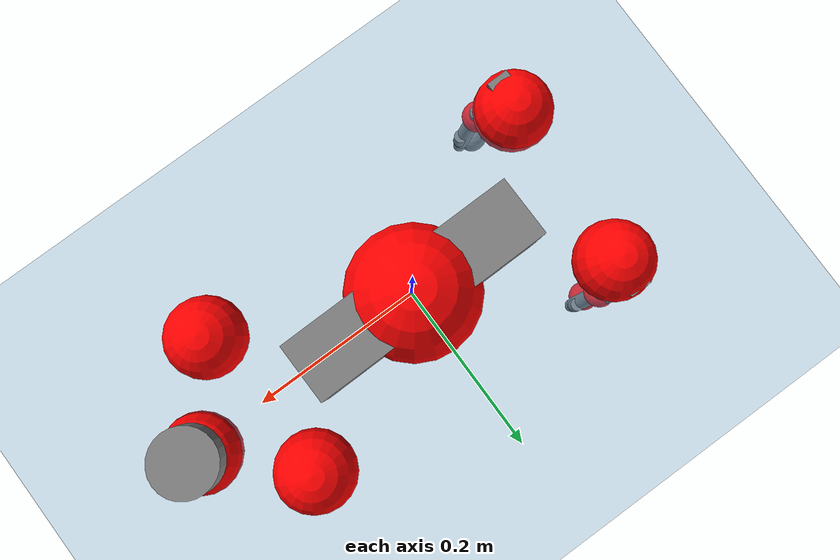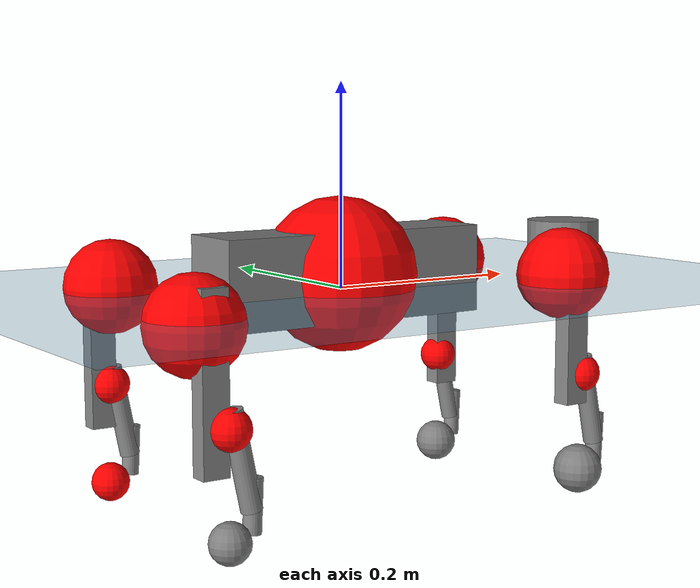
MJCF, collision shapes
<mujoco model="go2">
  <compiler angle="radian" assetdir="assets" balanceinertia="true" inertiafromgeom="false"/>

  <option timestep="0.005" density="1.2" viscosity="2e-05"/>

  <size nkey="1"/>

  <visual>
    <quality shadowsize="8192"/>
    <map shadowclip="0.5"/>
  </visual>

  <default>
    <default class="/">
      <geom contype="0" conaffinity="0" group="1" solref="-1000 -80"/>
      <site size="0.01 0.005 0.005" group="5"/>
      <general forcelimited="true" biastype="affine" gainprm="20" biasprm="0 -20 -0.5"/>
      <default class="go2">
        <joint armature="0.01" damping="0.01" frictionloss="0.2"/>
        <geom condim="1" margin="0.001"/>
        <default class="visual">
          <geom type="mesh" group="2"/>
        </default>
        <default class="collision">
          <geom group="3"/>
          <default class="foot">
            <geom size="0.022 0 0" condim="6" priority="1" friction="0.8 0.02 0.01" solimp="0.015 1 0.022"/>
          </default>
        </default>
        <default class="reward_collision_sphere">
          <geom group="5" rgba="1 0 0 1"/>
        </default>
      </default>
    </default>
  </default>

  <asset>
    <texture type="skybox" colorspace="auto" name="//unnamed_texture_0" builtin="gradient" rgb1="0.95 0.95 0.95" rgb2="0.95 0.95 0.95" width="100" height="600"/>
    <texture type="2d" colorspace="auto" name="texplane" builtin="checker" rgb1="0.345 0.575 0.748" rgb2="0.345 0.575 0.748" markrgb="1 1 1" width="512" height="512"/>
    <material name="MatPlane" class="/" texture="texplane" texuniform="true" texrepeat="2 2" specular="0.9"/>
    <material name="metal" class="/" rgba="0.9 0.95 0.95 1"/>
    <material name="black" class="/" rgba="0 0 0 1"/>
    <material name="white" class="/"/>
    <material name="gray" class="/" rgba="0.671705 0.692426 0.77427 1"/>
    <mesh name="base_0" class="/" file="base_0.obj"/>
    <mesh name="base_1" class="/" file="base_1.obj"/>
    <mesh name="base_2" class="/" file="base_2.obj"/>
    <mesh name="base_3" class="/" file="base_3.obj"/>
    <mesh name="base_4" class="/" file="base_4.obj"/>
    <mesh name="hip_0" class="/" file="hip_0.obj"/>
    <mesh name="hip_1" class="/" file="hip_1.obj"/>
    <mesh name="thigh_0" class="/" file="thigh_0.obj"/>
    <mesh name="thigh_1" class="/" file="thigh_1.obj"/>
    <mesh name="thigh_mirror_0" class="/" file="thigh_mirror_0.obj"/>
    <mesh name="thigh_mirror_1" class="/" file="thigh_mirror_1.obj"/>
    <mesh name="calf_0" class="/" file="calf_0.obj"/>
    <mesh name="calf_1" class="/" file="calf_1.obj"/>
    <mesh name="calf_mirror_0" class="/" file="calf_mirror_0.obj"/>
    <mesh name="calf_mirror_1" class="/" file="calf_mirror_1.obj"/>
    <mesh name="foot" class="/" file="foot.obj"/>
  </asset>

  <worldbody>
    <geom name="floor" class="/" size="100 100 0.125" type="plane" group="0" material="MatPlane"/>
    <light name="toplight_shadow" class="/" pos="0 0 5" dir="0.0990148 0.0990148 -0.990148" type="directional" ambient="0.04 0.04 0.04" diffuse="0.55 0.55 0.55" specular="0.12 0.12 0.12"/>
    <light name="toplight_fill" class="/" pos="0 0 5" dir="0.0990148 0.0990148 -0.990148" type="directional" castshadow="false" ambient="0.04 0.04 0.04" diffuse="0.3 0.3 0.3" specular="0.08 0.08 0.08"/>
    <body name="trunk" childclass="go2" pos="-0.00140821 0.00123206 0.0136749" quat="0.99998 0.00180161 -0.00111539 0.00596287">
      <inertial pos="0.0211217 -0.0107997 -0.00131064" quat="0.0379813 0.679308 -0.0112106 0.732784" mass="2.82716" diaginertia="0.100164 0.0279958 0.000422899"/>
      <joint name="//unnamed_joint_0" type="free" armature="0" damping="0" frictionloss="0"/>
      <geom name="//unnamed_geom_1" class="visual" material="black" mesh="base_0"/>
      <geom name="//unnamed_geom_2" class="visual" material="black" mesh="base_1"/>
      <geom name="//unnamed_geom_3" class="visual" material="black" mesh="base_2"/>
      <geom name="//unnamed_geom_4" class="visual" material="white" mesh="base_3"/>
      <geom name="//unnamed_geom_5" class="visual" material="gray" mesh="base_4"/>
      <geom name="trunk_1" class="collision" size="0.143578 0.0356845 0.0435084" type="box"/>
      <geom name="trunk_2" class="collision" size="0.0381653 0.0343487" pos="0.291734 0 0.00461914" type="cylinder"/>
      <geom name="trunk_3" class="collision" size="0.0358754" pos="0.299924 0 -0.0277149"/>
      <geom name="//unnamed_geom_9" class="reward_collision_sphere" size="0.0763305"/>
      <geom name="//unnamed_geom_10" class="reward_collision_sphere" size="0.0457983" pos="0.286616 0 -0.0207861"/>
      <site name="imu" pos="-0.0386505 -0.0387346 0.0707819" size="0.00763305"/>
      <camera name="track" pos="0 -1.60874 0" quat="0.707107 0.707107 0 0" mode="trackcom"/>
      <camera name="ego_camera" pos="0.319372 0 0.0207861" quat="-0.5 -0.5 0.5 0.5"/>
      <body name="FL_hip" pos="0.196721 0.0326844 -0.00556373" quat="1 -5.00814e-05 -0.000258436 0.000211076">
        <inertial pos="0.00661834 0.00333574 0.0131938" quat="0.539066 0.519075 0.463255 0.474725" mass="0.326242" diaginertia="0.000956664 0.000230595 1.10322e-05"/>
        <joint name="FL_hip_joint" pos="0 0 0" axis="0.998362 0.0140991 -0.055452" stiffness="0.0483367" range="-1.06203 0.903793" armature="0.00760195" damping="0.0561165" frictionloss="0.0985601"/>
        <geom name="//unnamed_geom_11" class="visual" material="metal" mesh="hip_0"/>
        <geom name="//unnamed_geom_12" class="visual" material="gray" mesh="hip_1"/>
        <geom name="//unnamed_geom_13" class="collision" size="0.0351121 0.0152661" pos="0 0.0643498 0" quat="0.707107 0.707107 0 0" type="cylinder"/>
        <geom name="//unnamed_geom_14" class="reward_collision_sphere" size="0.0457983" pos="0 0.0563061 0"/>
        <body name="FL_thigh" pos="0.0105658 0.0708391 -0.0103535" quat="1 -0.000209073 0.000414992 0.000674647">
          <inertial pos="-0.00312998 -0.0170568 -0.0148776" quat="0.820891 0.0731489 -0.0284673 0.565665" mass="0.56337" diaginertia="0.00739215 0.00223989 2.39546e-05"/>
          <joint name="FL_thigh_joint" pos="0 0 0" axis="0.00371505 0.99996 0.0081965" stiffness="0.0053115" range="-1.42298 3.53932" armature="0.0107891" damping="0" frictionloss="0.154964"/>
          <geom name="//unnamed_geom_15" class="visual" material="metal" mesh="thigh_0"/>
          <geom name="//unnamed_geom_16" class="visual" material="gray" mesh="thigh_1"/>
          <geom name="//unnamed_geom_17" class="collision" size="0.081292 0.00935049 0.0129762" pos="0 0 -0.0491939" quat="0.707107 0 0.707107 0" type="box"/>
          <body name="FL_calf" pos="-0.0046208 0.000601297 -0.0991182" quat="1 -0.000215914 -0.000281822 0.000442156">
            <inertial pos="0.0212768 0.0124959 -0.0649048" quat="0.710765 0.00143565 -0.00492001 0.703411" mass="0.10837" diaginertia="0.00192581 0.000485154 1.09576e-06"/>
            <joint name="FL_calf_joint" pos="0 0 0" axis="-0.00193704 0.999721 0.0235202" stiffness="0.0198473" range="-2.43131 -0.992558" armature="0.00946394" damping="0.0226594" frictionloss="0.0452507"/>
            <geom name="//unnamed_geom_18" class="visual" material="gray" mesh="calf_0"/>
            <geom name="//unnamed_geom_19" class="visual" material="black" mesh="calf_1"/>
            <geom name="FL_calf0" class="collision" size="0.00915967 0.0457983" pos="0.00818904 0 -0.0277149" quat="0.994493 0 -0.104807 0" type="cylinder"/>
            <geom name="//unnamed_geom_21" class="collision" size="0.00839636 0.0248074" pos="0.0204726 0 -0.0683633" quat="0.999688 0 0.0249974 0" type="cylinder"/>
            <geom name="//unnamed_geom_22" class="visual" pos="0 0 -0.0983877" quat="1 0 0 0" material="black" mesh="foot"/>
            <geom name="FL_foot" class="foot" size="0.0215681" pos="-0.00204726 0 -0.0983877"/>
            <geom name="//unnamed_geom_24" class="reward_collision_sphere" size="0.0190826"/>
            <geom name="//unnamed_geom_25" class="reward_collision_sphere" size="0.0190826" pos="-0.00204726 0 -0.0983877"/>
            <site name="FL_foot" class="foot" pos="-0.00204726 0 -0.0983877" size="0.00763305"/>
          </body>
        </body>
      </body>
      <body name="FR_hip" pos="0.20549 -0.0391741 -0.00408836" quat="0.999975 -0.00130114 -6.06558e-06 0.00692482">
        <inertial pos="-7.62744e-05 -0.00346473 0.00334083" quat="0.473841 0.487503 0.558057 0.475803" mass="0.262441" diaginertia="0.00101693 0.000209504 1.04124e-05"/>
        <joint name="FR_hip_joint" pos="0 0 0" axis="0.999342 -0.0323917 -0.0163264" stiffness="0.054976" range="-0.776003 1.18901" armature="0.00647926" damping="0.0496296" frictionloss="0.0876598"/>
        <geom name="//unnamed_geom_26" class="visual" pos="0 2.98335e-09 1.27962e-07" quat="4.63268e-05 1 0 0" material="metal" mesh="hip_0"/>
        <geom name="//unnamed_geom_27" class="visual" pos="0 4.83637e-09 -3.16499e-07" quat="4.63268e-05 1 0 0" material="gray" mesh="hip_1"/>
        <geom name="//unnamed_geom_28" class="collision" size="0.0351121 0.0152661" pos="0 -0.0643498 0" quat="0.707107 0.707107 0 0" type="cylinder"/>
        <geom name="//unnamed_geom_29" class="reward_collision_sphere" size="0.0457983" pos="0 -0.0563061 0"/>
        <body name="FR_thigh" pos="0.00111243 -0.0688745 0.000102287" quat="0.999995 0.00180441 -0.000141021 0.00244599">
          <inertial pos="0.00289717 0.0191297 -0.0106881" quat="0.537701 -0.0288859 0.0906569 0.83775" mass="0.442117" diaginertia="0.00662537 0.00220053 1.68796e-05"/>
          <joint name="FR_thigh_joint" pos="0 0 0" axis="-0.0007576 -0.999999 0.00117896" range="-3.51085 1.72246" armature="0.0102381" damping="0.0766244" frictionloss="0.231894"/>
          <geom name="//unnamed_geom_30" class="visual" material="metal" mesh="thigh_mirror_0"/>
          <geom name="//unnamed_geom_31" class="visual" material="gray" mesh="thigh_mirror_1"/>
          <geom name="//unnamed_geom_32" class="collision" size="0.081292 0.00935049 0.0129762" pos="0 0 -0.0491939" quat="0.707107 0 0.707107 0" type="box"/>
          <body name="FR_calf" pos="0.0135098 -0.000291738 -0.101221" quat="0.999999 -0.000844116 -0.000186067 0.0010975">
            <inertial pos="0.0100817 0.0128174 -0.0757594" quat="0.736425 0.0189916 0.0487749 0.674492" mass="0.12709" diaginertia="0.00194023 0.000486334 1.42607e-06"/>
            <joint name="FR_calf_joint" pos="0 0 0" axis="-0.0150424 -0.999868 0.00607546" stiffness="0.0151904" range="0.829258 2.75232" armature="0.0077083" damping="0.0509762" frictionloss="0.203293"/>
            <geom name="//unnamed_geom_33" class="visual" material="gray" mesh="calf_mirror_0"/>
            <geom name="//unnamed_geom_34" class="visual" material="black" mesh="calf_mirror_1"/>
            <geom name="FR_calf0" class="collision" size="0.00992297 0.0457983" pos="0.0102363 0 -0.0277149" quat="0.995004 0 -0.0998334 0" type="cylinder"/>
            <geom name="//unnamed_geom_36" class="collision" size="0.00839636 0.0248074" pos="0.0204726 0 -0.0683633" quat="0.999688 0 0.0249974 0" type="cylinder"/>
            <geom name="//unnamed_geom_37" class="visual" pos="0 0 -0.0983877" quat="1 0 0 0" material="black" mesh="foot"/>
            <geom name="FR_foot" class="foot" size="0.0245085" pos="-0.00204726 0 -0.0983877"/>
            <geom name="//unnamed_geom_39" class="reward_collision_sphere" size="0.0190826"/>
            <geom name="//unnamed_geom_40" class="reward_collision_sphere" size="0.0190826" pos="-0.00204726 0 -0.0983877"/>
            <site name="FR_foot" class="foot" pos="-0.00204726 0 -0.0983877" size="0.00763305"/>
          </body>
        </body>
      </body>
      <body name="RL_hip" pos="-0.195825 0.0463318 -0.00945953" quat="0.999998 0.00136767 -0.0016211 -0.000379764">
        <inertial pos="0.00980668 0.0136864 0.0136916" quat="0.510492 0.49347 0.478019 0.517091" mass="0.335006" diaginertia="0.00117817 0.000204862 1.24602e-05"/>
        <joint name="RL_hip_joint" pos="0 0 0" axis="-0.998354 0.0562113 -0.0113572" range="-0.815526 0.798692" armature="0.0032753" damping="0.00490885" frictionloss="0.142878"/>
        <geom name="//unnamed_geom_41" class="visual" pos="-4.89343e-09 0 -9.59226e-07" quat="4.63268e-05 0 1 0" material="metal" mesh="hip_0"/>
        <geom name="//unnamed_geom_42" class="visual" pos="-7.93284e-09 0 -8.50697e-07" quat="4.63268e-05 0 1 0" material="gray" mesh="hip_1"/>
        <geom name="//unnamed_geom_43" class="collision" size="0.0351121 0.0152661" pos="0 0.0643498 0" quat="0.707107 0.707107 0 0" type="cylinder"/>
        <geom name="//unnamed_geom_44" class="reward_collision_sphere" size="0.0457983" pos="0 0.0563061 0"/>
        <body name="RL_thigh" pos="0.00115382 0.0882217 -0.0134855" quat="0.999989 -0.000820373 -0.00101122 -0.00460551">
          <inertial pos="-0.0182611 -0.00835381 -0.000819225" quat="0.830445 0.0851165 -0.0209746 0.55016" mass="0.416478" diaginertia="0.0045766 0.00156577 1.33349e-05"/>
          <joint name="RL_thigh_joint" pos="0 0 0" axis="0.0643527 0.997399 0.0324698" range="-0.354685 4.53437" armature="0.00706599" damping="0.0776812" frictionloss="0.10559"/>
          <geom name="//unnamed_geom_45" class="visual" material="metal" mesh="thigh_0"/>
          <geom name="//unnamed_geom_46" class="visual" material="gray" mesh="thigh_1"/>
          <geom name="//unnamed_geom_47" class="collision" size="0.081292 0.00935049 0.0129762" pos="0 0 -0.0491939" quat="0.707107 0 0.707107 0" type="box"/>
          <body name="RL_calf" pos="0.00822658 -0.00624492 -0.0875909" quat="0.999987 -0.00273931 0.00435485 -9.38091e-05">
            <inertial pos="0.0197634 -0.00958255 -0.0514016" quat="0.735864 0.0110849 0.0426253 0.675696" mass="0.119908" diaginertia="0.00189745 0.000597953 1.15676e-06"/>
            <joint name="RL_calf_joint" pos="0 0 0" axis="-0.0012648 0.999966 -0.00814021" stiffness="0.0114563" range="-2.76642 -0.541985" armature="0.00319826" damping="0.0733057" frictionloss="0.143904"/>
            <geom name="//unnamed_geom_48" class="visual" material="gray" mesh="calf_0"/>
            <geom name="//unnamed_geom_49" class="visual" material="black" mesh="calf_1"/>
            <geom name="RL_calf0" class="collision" size="0.00992297 0.0457983" pos="0.0102363 0 -0.0277149" quat="0.995004 0 -0.0998334 0" type="cylinder"/>
            <geom name="//unnamed_geom_51" class="collision" size="0.00839636 0.0248074" pos="0.0204726 0 -0.0683633" quat="0.999688 0 0.0249974 0" type="cylinder"/>
            <geom name="//unnamed_geom_52" class="visual" pos="0 0 -0.0983877" quat="1 0 0 0" material="black" mesh="foot"/>
            <geom name="RL_foot" class="foot" size="0.0135727" pos="-0.00204726 0 -0.0983877"/>
            <geom name="//unnamed_geom_54" class="reward_collision_sphere" size="0.0190826"/>
            <geom name="//unnamed_geom_55" class="reward_collision_sphere" size="0.0190826" pos="-0.00204726 0 -0.0983877"/>
            <site name="RL_foot" class="foot" pos="-0.00204726 0 -0.0983877" size="0.00763305"/>
          </body>
        </body>
      </body>
      <body name="RR_hip" pos="-0.212645 -0.0403472 -0.0197329" quat="0.999999 -0.000643029 0.000598598 0.000987779">
        <inertial pos="0.0161864 0.00639332 -0.00236271" quat="0.54104 0.459736 0.475652 0.519301" mass="0.296538" diaginertia="0.000690183 0.000167784 7.62143e-06"/>
        <joint name="RR_hip_joint" pos="0 0 0" axis="-0.997268 0.0619065 0.0402952" range="-0.920766 1.03647" armature="0.00755627" damping="0.0240757" frictionloss="0.0416353"/>
        <geom name="//unnamed_geom_56" class="visual" pos="4.88584e-09 2.98335e-09 -1.08719e-06" quat="2.14617e-09 4.63268e-05 4.63268e-05 -1" material="metal" mesh="hip_0"/>
        <geom name="//unnamed_geom_57" class="visual" pos="7.95161e-09 4.83637e-09 -5.34197e-07" quat="2.14617e-09 4.63268e-05 4.63268e-05 -1" material="gray" mesh="hip_1"/>
        <geom name="//unnamed_geom_58" class="collision" size="0.0351121 0.0152661" pos="0 -0.0643498 0" quat="0.707107 0.707107 0 0" type="cylinder"/>
        <geom name="//unnamed_geom_59" class="reward_collision_sphere" size="0.0457983" pos="0 -0.0563061 0"/>
        <body name="RR_thigh" pos="0.00137386 -0.0812334 0.00346401" quat="1 -6.34134e-09 -0.000275459 0.000586382">
          <inertial pos="-0.00988165 0.0251436 -0.00293945" quat="0.51545 -0.0127265 0.0853573 0.852563" mass="0.635958" diaginertia="0.00603968 0.00204461 1.86972e-05"/>
          <joint name="RR_thigh_joint" pos="0 0 0" axis="-0.0214161 -0.999559 -0.0205915" range="-4.52208 0.726643" armature="0.00850308" damping="0.0276189" frictionloss="0.180318"/>
          <geom name="//unnamed_geom_60" class="visual" material="metal" mesh="thigh_mirror_0"/>
          <geom name="//unnamed_geom_61" class="visual" material="gray" mesh="thigh_mirror_1"/>
          <geom name="//unnamed_geom_62" class="collision" size="0.081292 0.00935049 0.0129762" pos="0 0 -0.0491939" quat="0.707107 0 0.707107 0" type="box"/>
          <body name="RR_calf" pos="0.0128937 -0.0100825 -0.0888075" quat="0.999972 -0.00212891 -0.00131821 -0.0069817">
            <inertial pos="0.00197109 -0.000564938 -0.0666057" quat="0.667025 -0.0325351 -0.0228972 0.743972" mass="0.099647" diaginertia="0.00154486 0.000404141 1.16515e-06"/>
            <joint name="RR_calf_joint" pos="0 0 0" axis="0.0639756 -0.9975 0.0300296" stiffness="0.0644918" range="0.60683 2.79148" armature="0.00802703" damping="0.0675806" frictionloss="0.181408"/>
            <geom name="//unnamed_geom_63" class="visual" material="gray" mesh="calf_mirror_0"/>
            <geom name="//unnamed_geom_64" class="visual" material="black" mesh="calf_mirror_1"/>
            <geom name="RR_calf0" class="collision" size="0.00992297 0.0457983" pos="0.0102363 0 -0.0277149" quat="0.995004 0 -0.0998334 0" type="cylinder"/>
            <geom name="//unnamed_geom_66" class="collision" size="0.00839636 0.0248074" pos="0.0204726 0 -0.0683633" quat="0.999688 0 0.0249974 0" type="cylinder"/>
            <geom name="//unnamed_geom_67" class="visual" pos="0 0 -0.0983877" quat="1 0 0 0" material="black" mesh="foot"/>
            <geom name="RR_foot" class="foot" size="0.0191832" pos="-0.00204726 0 -0.0983877"/>
            <geom name="//unnamed_geom_69" class="reward_collision_sphere" size="0.0190826"/>
            <geom name="//unnamed_geom_70" class="reward_collision_sphere" size="0.0190826" pos="-0.00204726 0 -0.0983877"/>
            <site name="RR_foot" class="foot" pos="-0.00204726 0 -0.0983877" size="0.00763305"/>
          </body>
        </body>
      </body>
    </body>
  </worldbody>

  <contact>
    <pair class="/" geom1="floor" geom2="FL_foot" name="//unnamed_contact_0"/>
    <pair class="/" geom1="floor" geom2="FR_foot" name="//unnamed_contact_1"/>
    <pair class="/" geom1="floor" geom2="RL_foot" name="//unnamed_contact_2"/>
    <pair class="/" geom1="floor" geom2="RR_foot" name="//unnamed_contact_3"/>
  </contact>

  <actuator>
    <general name="FL_hip" class="/" joint="FL_hip_joint" forcerange="-17.4242 17.4242" gainprm="14.2635" biasprm="0 -14.2635 -0.417017"/>
    <general name="FL_thigh" class="/" joint="FL_thigh_joint" forcerange="-16.4964 16.4964" gainprm="14.2635" biasprm="0 -14.2635 -0.417017"/>
    <general name="FL_calf" class="/" joint="FL_calf_joint" forcerange="-24.8666 24.8666" gainprm="14.2635" biasprm="0 -14.2635 -0.417017"/>
    <general name="FR_hip" class="/" joint="FR_hip_joint" forcerange="-19.4717 19.4717" gainprm="14.2635" biasprm="0 -14.2635 -0.417017"/>
    <general name="FR_thigh" class="/" joint="FR_thigh_joint" forcerange="-13.1734 13.1734" gainprm="14.2635" biasprm="0 -14.2635 -0.417017"/>
    <general name="FR_calf" class="/" joint="FR_calf_joint" forcerange="-33.1746 33.1746" gainprm="14.2635" biasprm="0 -14.2635 -0.417017"/>
    <general name="RL_hip" class="/" joint="RL_hip_joint" forcerange="-17.9475 17.9475" gainprm="14.2635" biasprm="0 -14.2635 -0.417017"/>
    <general name="RL_thigh" class="/" joint="RL_thigh_joint" forcerange="-27.2719 27.2719" gainprm="14.2635" biasprm="0 -14.2635 -0.417017"/>
    <general name="RL_calf" class="/" joint="RL_calf_joint" forcerange="-18.884 18.884" gainprm="14.2635" biasprm="0 -14.2635 -0.417017"/>
    <general name="RR_hip" class="/" joint="RR_hip_joint" forcerange="-18.718 18.718" gainprm="14.2635" biasprm="0 -14.2635 -0.417017"/>
    <general name="RR_thigh" class="/" joint="RR_thigh_joint" forcerange="-21.3725 21.3725" gainprm="14.2635" biasprm="0 -14.2635 -0.417017"/>
    <general name="RR_calf" class="/" joint="RR_calf_joint" forcerange="-24.3369 24.3369" gainprm="14.2635" biasprm="0 -14.2635 -0.417017"/>
  </actuator>

  <sensor>
    <gyro site="imu" name="imu_angular_velocity"/>
    <velocimeter site="imu" name="imu_linear_velocity"/>
    <framelinvel objtype="site" objname="FL_foot" name="FL_foot_global_linear_velocity"/>
    <framelinvel objtype="site" objname="FR_foot" name="FR_foot_global_linear_velocity"/>
    <framelinvel objtype="site" objname="RL_foot" name="RL_foot_global_linear_velocity"/>
    <framelinvel objtype="site" objname="RR_foot" name="RR_foot_global_linear_velocity"/>
  </sensor>

  <keyframe>
    <key name="home" qpos="0 0 0.325 1 0 0 0 0.1 0.8 -1.5 -0.1 -0.8 1.5 -0.1 0.8 -1.5 0.1 -0.8 1.5"/>
  </keyframe>
</mujoco>
